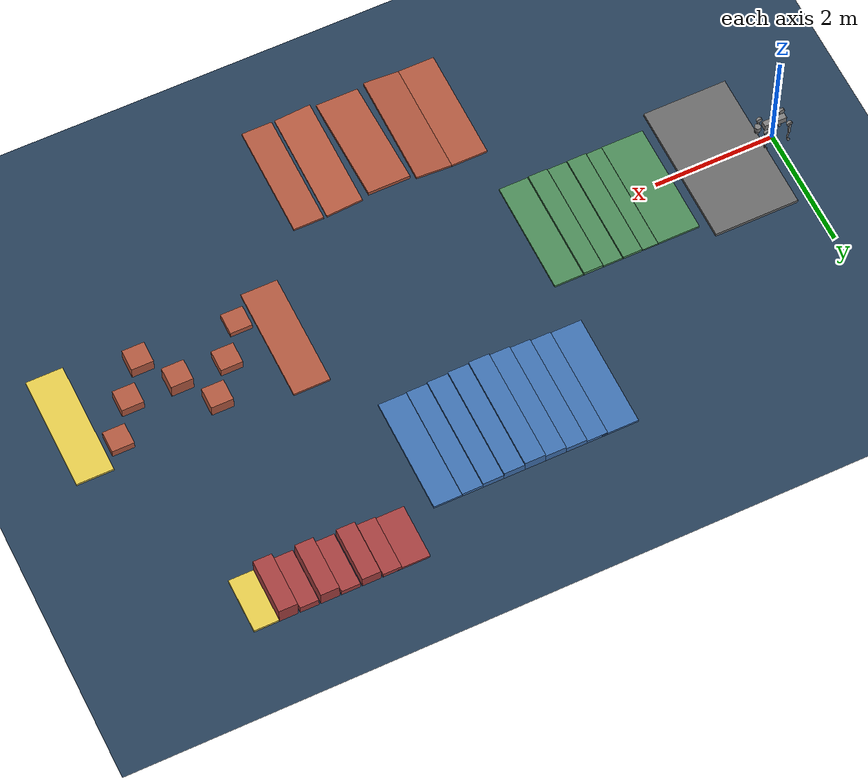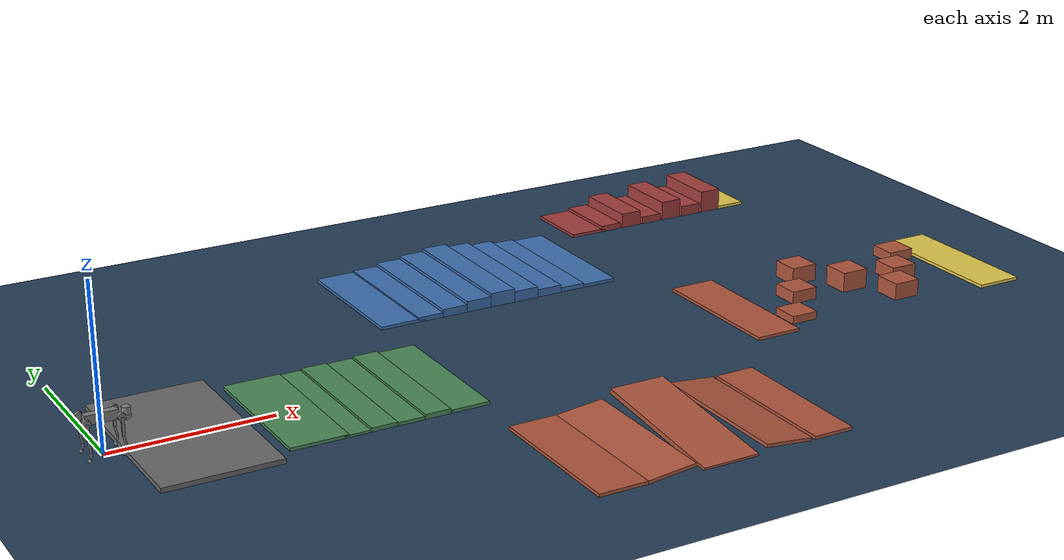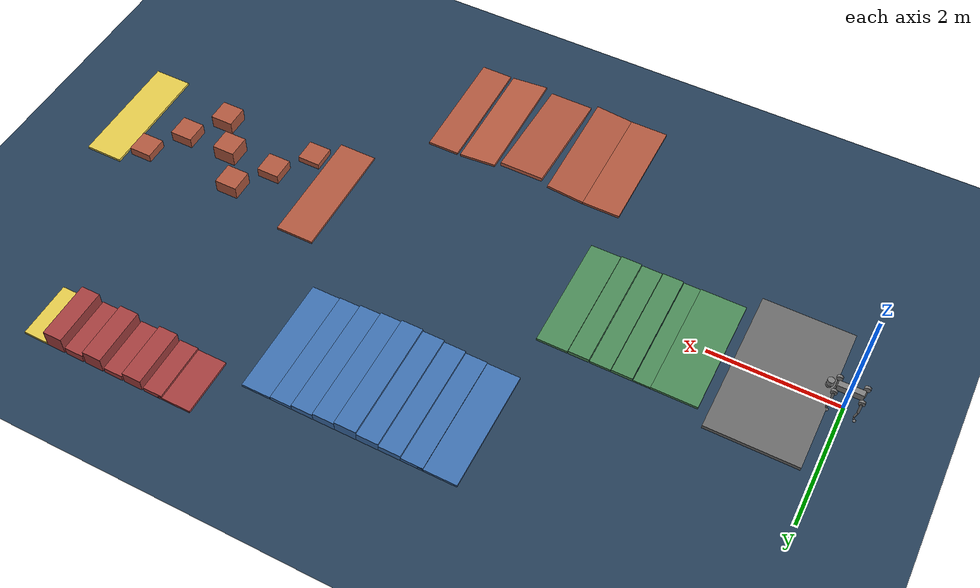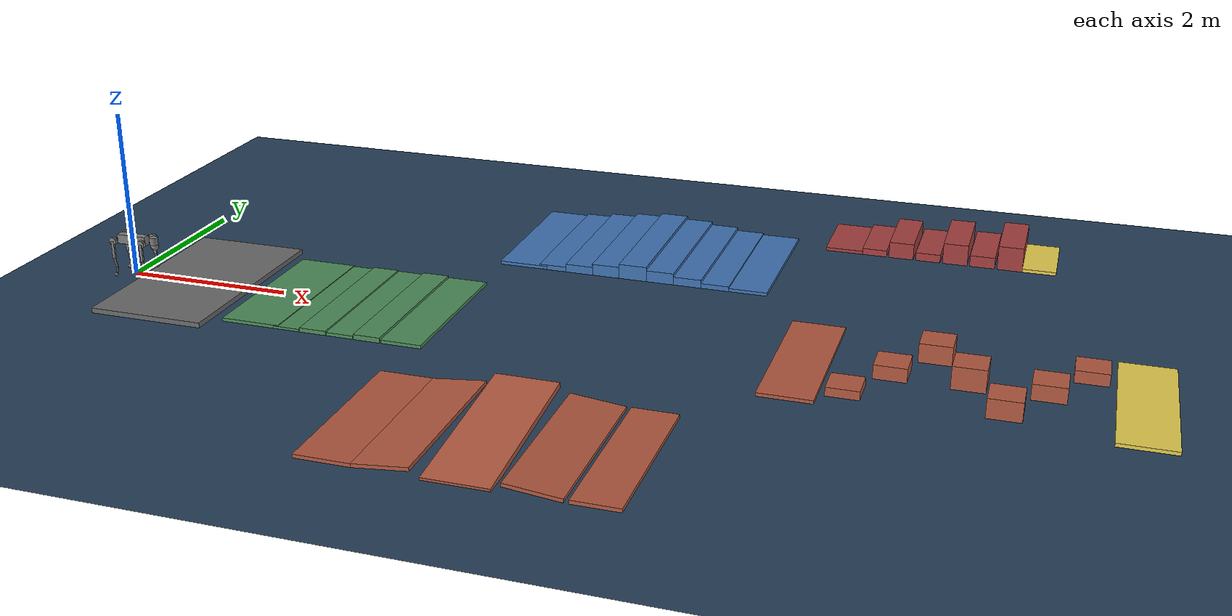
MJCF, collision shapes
<mujoco model="go2 terrain course scene">
  <include file="go2.xml"/>

  <statistic center="5 0 0.3" extent="6.0"/>

  <visual>
    <headlight diffuse="0.6 0.6 0.6" ambient="0.3 0.3 0.3" specular="0 0 0"/>
    <rgba haze="0.15 0.25 0.35 1"/>
    <global azimuth="-130" elevation="-20"/>
  </visual>

  <asset>
    <texture type="skybox" builtin="gradient" rgb1="0.3 0.5 0.7" rgb2="0 0 0" width="512" height="3072"/>
    <texture type="2d" name="groundplane" builtin="checker" mark="edge"
      rgb1="0.2 0.3 0.4" rgb2="0.1 0.2 0.3" markrgb="0.8 0.8 0.8" width="300" height="300"/>
    <material name="groundplane" texture="groundplane" texuniform="true" texrepeat="5 5" reflectance="0.2"/>
    <material name="spawn" rgba="0.42 0.42 0.42 1"/>
    <material name="easy" rgba="0.30 0.55 0.35 1"/>
    <material name="medium" rgba="0.25 0.45 0.70 1"/>
    <material name="hard" rgba="0.70 0.35 0.25 1"/>
    <material name="extreme" rgba="0.65 0.25 0.25 1"/>
    <material name="finish" rgba="0.90 0.80 0.30 1"/>
  </asset>

  <worldbody>
    <light pos="0 0 1.5" dir="0 0 -1" directional="true"/>

    <!-- Global floor -->
    <geom name="floor" size="0 0 0.05" type="plane" material="groundplane"
      friction="1.0 0.03 0.01" condim="6" margin="0.004" solref="0.003 1" solimp="0.95 0.99 0.001" priority="2"/>

    <!-- Spawn / staging zone -->
    <geom name="spawn_pad" type="box" pos="0.90 0 0.03" size="0.70 1.20 0.03" material="spawn"
      friction="1.0 0.03 0.01" condim="6" margin="0.004" solref="0.003 1" solimp="0.95 0.99 0.001" priority="2"/>

    <!-- Task A (easy): gentle ripples near centerline -->
    <geom name="easy_start" type="box" pos="2.10 0.00 0.02" size="0.35 0.95 0.02" material="easy"
      friction="1.0 0.03 0.01" condim="6" margin="0.004" solref="0.003 1" solimp="0.95 0.99 0.001" priority="2"/>
    <geom name="easy_01" type="box" pos="2.55 0.00 0.015" size="0.16 0.95 0.015" material="easy"
      friction="1.0 0.03 0.01" condim="6" margin="0.004" solref="0.003 1" solimp="0.95 0.99 0.001" priority="2"/>
    <geom name="easy_02" type="box" pos="2.88 0.00 0.025" size="0.16 0.95 0.025" material="easy"
      friction="1.0 0.03 0.01" condim="6" margin="0.004" solref="0.003 1" solimp="0.95 0.99 0.001" priority="2"/>
    <geom name="easy_03" type="box" pos="3.21 0.00 0.020" size="0.16 0.95 0.020" material="easy"
      friction="1.0 0.03 0.01" condim="6" margin="0.004" solref="0.003 1" solimp="0.95 0.99 0.001" priority="2"/>
    <geom name="easy_04" type="box" pos="3.54 0.00 0.030" size="0.16 0.95 0.030" material="easy"
      friction="1.0 0.03 0.01" condim="6" margin="0.004" solref="0.003 1" solimp="0.95 0.99 0.001" priority="2"/>
    <geom name="easy_end" type="box" pos="3.95 0.00 0.02" size="0.24 0.95 0.02" material="easy"
      friction="1.0 0.03 0.01" condim="6" margin="0.004" solref="0.003 1" solimp="0.95 0.99 0.001" priority="2"/>

    <!-- Task B (medium): wide up/down stairs at +Y -->
    <geom name="med_stair_start" type="box" pos="4.40 2.60 0.02" size="0.30 0.95 0.02" material="medium"
      friction="1.0 0.03 0.01" condim="6" margin="0.004" solref="0.003 1" solimp="0.95 0.99 0.001" priority="2"/>
    <geom name="med_stair_01" type="box" pos="4.78 2.60 0.03" size="0.17 0.95 0.03" material="medium"
      friction="1.0 0.03 0.01" condim="6" margin="0.004" solref="0.003 1" solimp="0.95 0.99 0.001" priority="2"/>
    <geom name="med_stair_02" type="box" pos="5.12 2.60 0.05" size="0.17 0.95 0.05" material="medium"
      friction="1.0 0.03 0.01" condim="6" margin="0.004" solref="0.003 1" solimp="0.95 0.99 0.001" priority="2"/>
    <geom name="med_stair_03" type="box" pos="5.46 2.60 0.07" size="0.17 0.95 0.07" material="medium"
      friction="1.0 0.03 0.01" condim="6" margin="0.004" solref="0.003 1" solimp="0.95 0.99 0.001" priority="2"/>
    <geom name="med_stair_04" type="box" pos="5.80 2.60 0.09" size="0.17 0.95 0.09" material="medium"
      friction="1.0 0.03 0.01" condim="6" margin="0.004" solref="0.003 1" solimp="0.95 0.99 0.001" priority="2"/>
    <geom name="med_stair_05" type="box" pos="6.14 2.60 0.07" size="0.17 0.95 0.07" material="medium"
      friction="1.0 0.03 0.01" condim="6" margin="0.004" solref="0.003 1" solimp="0.95 0.99 0.001" priority="2"/>
    <geom name="med_stair_06" type="box" pos="6.48 2.60 0.05" size="0.17 0.95 0.05" material="medium"
      friction="1.0 0.03 0.01" condim="6" margin="0.004" solref="0.003 1" solimp="0.95 0.99 0.001" priority="2"/>
    <geom name="med_stair_07" type="box" pos="6.82 2.60 0.03" size="0.17 0.95 0.03" material="medium"
      friction="1.0 0.03 0.01" condim="6" margin="0.004" solref="0.003 1" solimp="0.95 0.99 0.001" priority="2"/>
    <geom name="med_stair_end" type="box" pos="7.22 2.60 0.02" size="0.23 0.95 0.02" material="medium"
      friction="1.0 0.03 0.01" condim="6" margin="0.004" solref="0.003 1" solimp="0.95 0.99 0.001" priority="2"/>

    <!-- Task C (medium-hard): ramp + cambered platform at -Y -->
    <geom name="camber_start" type="box" pos="4.35 -2.60 0.02" size="0.30 0.95 0.02" material="hard"
      friction="1.0 0.03 0.01" condim="6" margin="0.004" solref="0.003 1" solimp="0.95 0.99 0.001" priority="2"/>
    <geom name="camber_up" type="box" pos="4.95 -2.60 0.05" size="0.30 0.95 0.02" euler="0 -0.10 0" material="hard"
      friction="1.0 0.03 0.01" condim="6" margin="0.004" solref="0.003 1" solimp="0.95 0.99 0.001" priority="2"/>
    <geom name="camber_roll" type="box" pos="5.70 -2.60 0.08" size="0.35 0.95 0.03" euler="0.10 0 0" material="hard"
      friction="1.0 0.03 0.01" condim="6" margin="0.004" solref="0.003 1" solimp="0.95 0.99 0.001" priority="2"/>
    <geom name="camber_down" type="box" pos="6.45 -2.60 0.05" size="0.30 0.95 0.02" euler="0 0.10 0" material="hard"
      friction="1.0 0.03 0.01" condim="6" margin="0.004" solref="0.003 1" solimp="0.95 0.99 0.001" priority="2"/>
    <geom name="camber_end" type="box" pos="7.05 -2.60 0.02" size="0.25 0.95 0.02" material="hard"
      friction="1.0 0.03 0.01" condim="6" margin="0.004" solref="0.003 1" solimp="0.95 0.99 0.001" priority="2"/>

    <!-- Task D (hard): zig-zag stepping stones in front -->
    <geom name="hard_start" type="box" pos="8.20 0.00 0.02" size="0.30 0.95 0.02" material="hard"
      friction="1.0 0.03 0.01" condim="6" margin="0.004" solref="0.003 1" solimp="0.95 0.99 0.001" priority="2"/>
    <geom name="hard_01" type="box" pos="8.75 -0.55 0.05" size="0.18 0.18 0.05" material="hard"
      friction="1.0 0.03 0.01" condim="6" margin="0.004" solref="0.003 1" solimp="0.95 0.99 0.001" priority="2"/>
    <geom name="hard_02" type="box" pos="9.15 0.00 0.08" size="0.18 0.18 0.08" material="hard"
      friction="1.0 0.03 0.01" condim="6" margin="0.004" solref="0.003 1" solimp="0.95 0.99 0.001" priority="2"/>
    <geom name="hard_03" type="box" pos="9.55 0.55 0.11" size="0.18 0.18 0.11" material="hard"
      friction="1.0 0.03 0.01" condim="6" margin="0.004" solref="0.003 1" solimp="0.95 0.99 0.001" priority="2"/>
    <geom name="hard_04" type="box" pos="9.95 0.00 0.13" size="0.18 0.18 0.13" material="hard"
      friction="1.0 0.03 0.01" condim="6" margin="0.004" solref="0.003 1" solimp="0.95 0.99 0.001" priority="2"/>
    <geom name="hard_05" type="box" pos="10.35 -0.55 0.11" size="0.18 0.18 0.11" material="hard"
      friction="1.0 0.03 0.01" condim="6" margin="0.004" solref="0.003 1" solimp="0.95 0.99 0.001" priority="2"/>
    <geom name="hard_06" type="box" pos="10.75 0.00 0.09" size="0.18 0.18 0.09" material="hard"
      friction="1.0 0.03 0.01" condim="6" margin="0.004" solref="0.003 1" solimp="0.95 0.99 0.001" priority="2"/>
    <geom name="hard_07" type="box" pos="11.15 0.55 0.07" size="0.18 0.18 0.07" material="hard"
      friction="1.0 0.03 0.01" condim="6" margin="0.004" solref="0.003 1" solimp="0.95 0.99 0.001" priority="2"/>
    <geom name="hard_end" type="box" pos="11.70 0.00 0.02" size="0.30 0.95 0.02" material="finish"
      friction="1.0 0.03 0.01" condim="6" margin="0.004" solref="0.003 1" solimp="0.95 0.99 0.001" priority="2"/>

    <!-- Task E (extreme): narrow high alternating steps at far +Y -->
    <geom name="extreme_start" type="box" pos="8.10 3.80 0.02" size="0.26 0.45 0.02" material="extreme"
      friction="1.0 0.03 0.01" condim="6" margin="0.004" solref="0.003 1" solimp="0.95 0.99 0.001" priority="2"/>
    <geom name="extreme_01" type="box" pos="8.45 3.80 0.04" size="0.15 0.45 0.04" material="extreme"
      friction="1.0 0.03 0.01" condim="6" margin="0.004" solref="0.003 1" solimp="0.95 0.99 0.001" priority="2"/>
    <geom name="extreme_02" type="box" pos="8.78 3.80 0.10" size="0.15 0.45 0.10" material="extreme"
      friction="1.0 0.03 0.01" condim="6" margin="0.004" solref="0.003 1" solimp="0.95 0.99 0.001" priority="2"/>
    <geom name="extreme_03" type="box" pos="9.11 3.80 0.05" size="0.15 0.45 0.05" material="extreme"
      friction="1.0 0.03 0.01" condim="6" margin="0.004" solref="0.003 1" solimp="0.95 0.99 0.001" priority="2"/>
    <geom name="extreme_04" type="box" pos="9.44 3.80 0.13" size="0.15 0.45 0.13" material="extreme"
      friction="1.0 0.03 0.01" condim="6" margin="0.004" solref="0.003 1" solimp="0.95 0.99 0.001" priority="2"/>
    <geom name="extreme_05" type="box" pos="9.77 3.80 0.07" size="0.15 0.45 0.07" material="extreme"
      friction="1.0 0.03 0.01" condim="6" margin="0.004" solref="0.003 1" solimp="0.95 0.99 0.001" priority="2"/>
    <geom name="extreme_06" type="box" pos="10.10 3.80 0.15" size="0.15 0.45 0.15" material="extreme"
      friction="1.0 0.03 0.01" condim="6" margin="0.004" solref="0.003 1" solimp="0.95 0.99 0.001" priority="2"/>
    <geom name="extreme_end" type="box" pos="10.45 3.80 0.02" size="0.20 0.45 0.02" material="finish"
      friction="1.0 0.03 0.01" condim="6" margin="0.004" solref="0.003 1" solimp="0.95 0.99 0.001" priority="2"/>
  </worldbody>
</mujoco>

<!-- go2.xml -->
<mujoco model="go2">
  <compiler angle="radian" meshdir="assets" autolimits="true" />

  <option cone="elliptic" impratio="100" />

  <default>
    <default class="go2">
      <geom friction="0.4" margin="0.001" condim="1"/>
      <joint axis="0 1 0" damping="0.1" armature="0.01" frictionloss="0.2"/>
      <motor ctrlrange="-23.7 23.7"/>
      <default class="abduction">
        <joint axis="1 0 0" range="-1.0472 1.0472"/>
      </default>
      <default class="hip">
        <default class="front_hip">
          <joint range="-1.5708 3.4907"/>
        </default>
        <default class="back_hip">
          <joint range="-0.5236 4.5379"/>
        </default>
      </default>
      <default class="knee">
        <joint range="-2.7227 -0.83776"/>
        <motor ctrlrange="-45.43 45.43"/>
      </default>
      <default class="visual">
        <geom type="mesh" contype="0" conaffinity="0" group="2"/>
      </default>
      <default class="collision">
        <geom group="3"/>
        <default class="foot">
          <geom size="0.022" pos="-0.002 0 -0.213" priority="1" condim="6"
            friction="0.4 0.02 0.01"/>
        </default>
      </default>
    </default>
  </default>

  <asset>
    <material name="metal" rgba=".9 .95 .95 1" />
    <material name="black" rgba="0 0 0 1" />
    <material name="white" rgba="1 1 1 1" />
    <material name="gray" rgba="0.671705 0.692426 0.774270 1" />

    <mesh file="base_0.obj" />
    <mesh file="base_1.obj" />
    <mesh file="base_2.obj" />
    <mesh file="base_3.obj" />
    <mesh file="base_4.obj" />
    <mesh file="hip_0.obj" />
    <mesh file="hip_1.obj" />
    <mesh file="thigh_0.obj" />
    <mesh file="thigh_1.obj" />
    <mesh file="thigh_mirror_0.obj" />
    <mesh file="thigh_mirror_1.obj" />
    <mesh file="calf_0.obj" />
    <mesh file="calf_1.obj" />
    <mesh file="calf_mirror_0.obj" />
    <mesh file="calf_mirror_1.obj" />
    <mesh file="foot.obj" />
  </asset>

  <worldbody>
    <body name="base_link" pos="0 0 0.445" childclass="go2">
      <inertial pos="0.021112 0 -0.005366" quat="-0.000543471 0.713435 -0.00173769 0.700719"
        mass="6.921"
        diaginertia="0.107027 0.0980771 0.0244531" />
      <freejoint />
      <geom mesh="base_0" material="black" class="visual" />
      <geom mesh="base_1" material="black" class="visual" />
      <geom mesh="base_2" material="black" class="visual" />
      <geom mesh="base_3" material="white" class="visual" />
      <geom mesh="base_4" material="gray" class="visual" />
      <geom size="0.1881 0.04675 0.057" type="box" class="collision" />
      <geom size="0.05 0.045" pos="0.285 0 0.01" type="cylinder" class="collision" />
      <geom size="0.047" pos="0.293 0 -0.06" class="collision" />
      <site name="imu" pos="-0.02557 0 0.04232" />
      <camera
        name="Gurukul_depth"
        pos="0.33 0 0.08"
        xyaxes="0 -1 0 0.3420201433 0 0.9396926208"
        resolution="106 60"
        focal="0.11041 0.11041"
        sensorsize="0.20955 0.12240"
        principalpixel="0 0"
      />
      <body name="FL_hip" pos="0.1934 0.0465 0">
        <inertial pos="-0.0054 0.00194 -0.000105" quat="0.497014 0.499245 0.505462 0.498237"
          mass="0.678"
          diaginertia="0.00088403 0.000596003 0.000479967" />
        <joint name="FL_hip_joint" class="abduction" />
        <geom mesh="hip_0" material="metal" class="visual" />
        <geom mesh="hip_1" material="gray" class="visual" />
        <geom size="0.046 0.02" pos="0 0.08 0" quat="1 1 0 0" type="cylinder" class="collision" />
        <body name="FL_thigh" pos="0 0.0955 0">
          <inertial pos="-0.00374 -0.0223 -0.0327" quat="0.829533 0.0847635 -0.0200632 0.551623"
            mass="1.152"
            diaginertia="0.00594973 0.00584149 0.000878787" />
          <joint name="FL_thigh_joint" class="front_hip" />
          <geom mesh="thigh_0" material="metal" class="visual" />
          <geom mesh="thigh_1" material="gray" class="visual" />
          <geom size="0.1065 0.01225 0.017" pos="0 0 -0.1065" quat="0.707107 0 0.707107 0"
            type="box" class="collision" />
          <body name="FL_calf" pos="0 0 -0.213">
            <inertial pos="0.00629595 -0.000622121 -0.141417"
              quat="0.710672 0.00154099 -0.00450087 0.703508"
              mass="0.241352" diaginertia="0.0014901 0.00146356 5.31397e-05" />
            <joint name="FL_calf_joint" class="knee" />
            <geom mesh="calf_0" material="gray" class="visual" />
            <geom mesh="calf_1" material="black" class="visual" />
            <geom size="0.012 0.06" pos="0.008 0 -0.06" quat="0.994493 0 -0.104807 0"
              type="cylinder" class="collision" />
            <geom size="0.011 0.0325" pos="0.02 0 -0.148" quat="0.999688 0 0.0249974 0"
              type="cylinder" class="collision" />
            <geom pos="0 0 -0.213" mesh="foot" class="visual" material="black" />
            <geom name="FL" class="foot" />
            <body name="FL_foot" pos="0 0 -0.213" />
          </body>
        </body>
      </body>
      <body name="FR_hip" pos="0.1934 -0.0465 0">
        <inertial pos="-0.0054 -0.00194 -0.000105" quat="0.498237 0.505462 0.499245 0.497014"
          mass="0.678"
          diaginertia="0.00088403 0.000596003 0.000479967" />
        <joint name="FR_hip_joint" class="abduction" />
        <geom mesh="hip_0" material="metal" class="visual" quat="4.63268e-05 1 0 0" />
        <geom mesh="hip_1" material="gray" class="visual" quat="4.63268e-05 1 0 0" />
        <geom size="0.046 0.02" pos="0 -0.08 0" quat="0.707107 0.707107 0 0" type="cylinder"
          class="collision" />
        <body name="FR_thigh" pos="0 -0.0955 0">
          <inertial pos="-0.00374 0.0223 -0.0327" quat="0.551623 -0.0200632 0.0847635 0.829533"
            mass="1.152"
            diaginertia="0.00594973 0.00584149 0.000878787" />
          <joint name="FR_thigh_joint" class="front_hip" />
          <geom mesh="thigh_mirror_0" material="metal" class="visual" />
          <geom mesh="thigh_mirror_1" material="gray" class="visual" />
          <geom size="0.1065 0.01225 0.017" pos="0 0 -0.1065" quat="0.707107 0 0.707107 0"
            type="box" class="collision" />
          <body name="FR_calf" pos="0 0 -0.213">
            <inertial pos="0.00629595 0.000622121 -0.141417"
              quat="0.703508 -0.00450087 0.00154099 0.710672"
              mass="0.241352" diaginertia="0.0014901 0.00146356 5.31397e-05" />
            <joint name="FR_calf_joint" class="knee" />
            <geom mesh="calf_mirror_0" material="gray" class="visual" />
            <geom mesh="calf_mirror_1" material="black" class="visual" />
            <geom size="0.013 0.06" pos="0.01 0 -0.06" quat="0.995004 0 -0.0998334 0"
              type="cylinder" class="collision" />
            <geom size="0.011 0.0325" pos="0.02 0 -0.148" quat="0.999688 0 0.0249974 0"
              type="cylinder" class="collision" />
            <geom pos="0 0 -0.213" mesh="foot" class="visual" material="black" />
            <geom name="FR" class="foot" />
            <body name="FR_foot" pos="0 0 -0.213" />
          </body>
        </body>
      </body>
      <body name="RL_hip" pos="-0.1934 0.0465 0">
        <inertial pos="0.0054 0.00194 -0.000105" quat="0.505462 0.498237 0.497014 0.499245"
          mass="0.678"
          diaginertia="0.00088403 0.000596003 0.000479967" />
        <joint name="RL_hip_joint" class="abduction" />
        <geom mesh="hip_0" material="metal" class="visual" quat="4.63268e-05 0 1 0" />
        <geom mesh="hip_1" material="gray" class="visual" quat="4.63268e-05 0 1 0" />
        <geom size="0.046 0.02" pos="0 0.08 0" quat="0.707107 0.707107 0 0" type="cylinder"
          class="collision" />
        <body name="RL_thigh" pos="0 0.0955 0">
          <inertial pos="-0.00374 -0.0223 -0.0327" quat="0.829533 0.0847635 -0.0200632 0.551623"
            mass="1.152"
            diaginertia="0.00594973 0.00584149 0.000878787" />
          <joint name="RL_thigh_joint" class="back_hip" />
          <geom mesh="thigh_0" material="metal" class="visual" />
          <geom mesh="thigh_1" material="gray" class="visual" />
          <geom size="0.1065 0.01225 0.017" pos="0 0 -0.1065" quat="0.707107 0 0.707107 0"
            type="box" class="collision" />
          <body name="RL_calf" pos="0 0 -0.213">
            <inertial pos="0.00629595 -0.000622121 -0.141417"
              quat="0.710672 0.00154099 -0.00450087 0.703508"
              mass="0.241352" diaginertia="0.0014901 0.00146356 5.31397e-05" />
            <joint name="RL_calf_joint" class="knee" />
            <geom mesh="calf_0" material="gray" class="visual" />
            <geom mesh="calf_1" material="black" class="visual" />
            <geom size="0.013 0.06" pos="0.01 0 -0.06" quat="0.995004 0 -0.0998334 0"
              type="cylinder" class="collision" />
            <geom size="0.011 0.0325" pos="0.02 0 -0.148" quat="0.999688 0 0.0249974 0"
              type="cylinder" class="collision" />
            <geom pos="0 0 -0.213" mesh="foot" class="visual" material="black" />
            <geom name="RL" class="foot" />
            <body name="RL_foot" pos="0 0 -0.213" />
          </body>
        </body>
      </body>
      <body name="RR_hip" pos="-0.1934 -0.0465 0">
        <inertial pos="0.0054 -0.00194 -0.000105" quat="0.499245 0.497014 0.498237 0.505462"
          mass="0.678"
          diaginertia="0.00088403 0.000596003 0.000479967" />
        <joint name="RR_hip_joint" class="abduction" />
        <geom mesh="hip_0" material="metal" class="visual"
          quat="2.14617e-09 4.63268e-05 4.63268e-05 -1" />
        <geom mesh="hip_1" material="gray" class="visual"
          quat="2.14617e-09 4.63268e-05 4.63268e-05 -1" />
        <geom size="0.046 0.02" pos="0 -0.08 0" quat="0.707107 0.707107 0 0" type="cylinder"
          class="collision" />
        <body name="RR_thigh" pos="0 -0.0955 0">
          <inertial pos="-0.00374 0.0223 -0.0327" quat="0.551623 -0.0200632 0.0847635 0.829533"
            mass="1.152"
            diaginertia="0.00594973 0.00584149 0.000878787" />
          <joint name="RR_thigh_joint" class="back_hip" />
          <geom mesh="thigh_mirror_0" material="metal" class="visual" />
          <geom mesh="thigh_mirror_1" material="gray" class="visual" />
          <geom size="0.1065 0.01225 0.017" pos="0 0 -0.1065" quat="0.707107 0 0.707107 0"
            type="box" class="collision" />
          <body name="RR_calf" pos="0 0 -0.213">
            <inertial pos="0.00629595 0.000622121 -0.141417"
              quat="0.703508 -0.00450087 0.00154099 0.710672"
              mass="0.241352" diaginertia="0.0014901 0.00146356 5.31397e-05" />
            <joint name="RR_calf_joint" class="knee" />
            <geom mesh="calf_mirror_0" material="gray" class="visual" />
            <geom mesh="calf_mirror_1" material="black" class="visual" />
            <geom size="0.013 0.06" pos="0.01 0 -0.06" quat="0.995004 0 -0.0998334 0"
              type="cylinder" class="collision" />
            <geom size="0.011 0.0325" pos="0.02 0 -0.148" quat="0.999688 0 0.0249974 0"
              type="cylinder" class="collision" />
            <geom pos="0 0 -0.213" mesh="foot" class="visual" material="black" />
            <geom name="RR" class="foot" />
            <body name="RR_foot" pos="0 0 -0.213" />
          </body>
        </body>
      </body>
    </body>
  </worldbody>

  <actuator>
    <motor class="abduction" name="FR_hip" joint="FR_hip_joint" />
    <motor class="hip" name="FR_thigh" joint="FR_thigh_joint" />
    <motor class="knee" name="FR_calf" joint="FR_calf_joint" />
    <motor class="abduction" name="FL_hip" joint="FL_hip_joint" />
    <motor class="hip" name="FL_thigh" joint="FL_thigh_joint" />
    <motor class="knee" name="FL_calf" joint="FL_calf_joint" />
    <motor class="abduction" name="RR_hip" joint="RR_hip_joint" />
    <motor class="hip" name="RR_thigh" joint="RR_thigh_joint" />
    <motor class="knee" name="RR_calf" joint="RR_calf_joint" />
    <motor class="abduction" name="RL_hip" joint="RL_hip_joint" />
    <motor class="hip" name="RL_thigh" joint="RL_thigh_joint" />
    <motor class="knee" name="RL_calf" joint="RL_calf_joint" />
  </actuator>

  <sensor>
    <jointpos name="FR_hip_pos" joint="FR_hip_joint" />
    <jointpos name="FR_thigh_pos" joint="FR_thigh_joint" />
    <jointpos name="FR_calf_pos" joint="FR_calf_joint" />
    <jointpos name="FL_hip_pos" joint="FL_hip_joint" />
    <jointpos name="FL_thigh_pos" joint="FL_thigh_joint" />
    <jointpos name="FL_calf_pos" joint="FL_calf_joint" />
    <jointpos name="RR_hip_pos" joint="RR_hip_joint" />
    <jointpos name="RR_thigh_pos" joint="RR_thigh_joint" />
    <jointpos name="RR_calf_pos" joint="RR_calf_joint" />
    <jointpos name="RL_hip_pos" joint="RL_hip_joint" />
    <jointpos name="RL_thigh_pos" joint="RL_thigh_joint" />
    <jointpos name="RL_calf_pos" joint="RL_calf_joint" />

    <jointvel name="FR_hip_vel" joint="FR_hip_joint" />
    <jointvel name="FR_thigh_vel" joint="FR_thigh_joint" />
    <jointvel name="FR_calf_vel" joint="FR_calf_joint" />
    <jointvel name="FL_hip_vel" joint="FL_hip_joint" />
    <jointvel name="FL_thigh_vel" joint="FL_thigh_joint" />
    <jointvel name="FL_calf_vel" joint="FL_calf_joint" />
    <jointvel name="RR_hip_vel" joint="RR_hip_joint" />
    <jointvel name="RR_thigh_vel" joint="RR_thigh_joint" />
    <jointvel name="RR_calf_vel" joint="RR_calf_joint" />
    <jointvel name="RL_hip_vel" joint="RL_hip_joint" />
    <jointvel name="RL_thigh_vel" joint="RL_thigh_joint" />
    <jointvel name="RL_calf_vel" joint="RL_calf_joint" />

    <jointactuatorfrc name="FR_hip_torque" joint="FR_hip_joint" noise="0.01" />
    <jointactuatorfrc name="FR_thigh_torque" joint="FR_thigh_joint" noise="0.01" />
    <jointactuatorfrc name="FR_calf_torque" joint="FR_calf_joint" noise="0.01" />
    <jointactuatorfrc name="FL_hip_torque" joint="FL_hip_joint" noise="0.01" />
    <jointactuatorfrc name="FL_thigh_torque" joint="FL_thigh_joint" noise="0.01" />
    <jointactuatorfrc name="FL_calf_torque" joint="FL_calf_joint" noise="0.01" />
    <jointactuatorfrc name="RR_hip_torque" joint="RR_hip_joint" noise="0.01" />
    <jointactuatorfrc name="RR_thigh_torque" joint="RR_thigh_joint" noise="0.01" />
    <jointactuatorfrc name="RR_calf_torque" joint="RR_calf_joint" noise="0.01" />
    <jointactuatorfrc name="RL_hip_torque" joint="RL_hip_joint" noise="0.01" />
    <jointactuatorfrc name="RL_thigh_torque" joint="RL_thigh_joint" noise="0.01" />
    <jointactuatorfrc name="RL_calf_torque" joint="RL_calf_joint" noise="0.01" />

    <framequat name="imu_quat" objtype="site" objname="imu" />
    <gyro name="imu_gyro" site="imu" />
    <accelerometer name="imu_acc" site="imu" />

    <framepos name="frame_pos" objtype="site" objname="imu" />
    <framelinvel name="frame_vel" objtype="site" objname="imu" />
  </sensor>

  <keyframe>
    <key name="home" qpos="0 0 0.27 1 0 0 0 0 0.9 -1.8 0 0.9 -1.8 0 0.9 -1.8 0 0.9 -1.8"
      ctrl="0 0.9 -1.8 0 0.9 -1.8 0 0.9 -1.8 0 0.9 -1.8" />
  </keyframe>
</mujoco>
